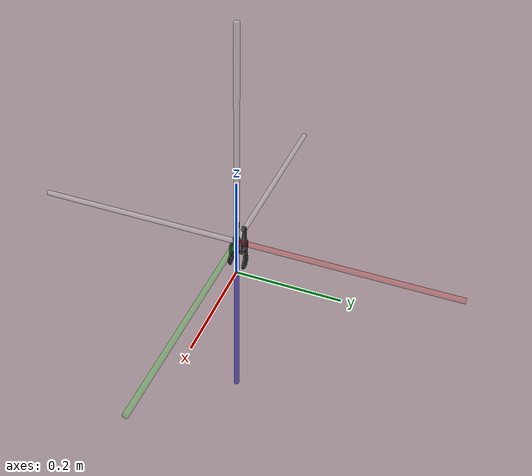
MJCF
<mujoco model="jetarm gripper">
    <compiler angle="radian" autolimits="true"/>
    <option integrator="implicitfast" gravity="0 0 0"/>
    <default>
        <default class="jetarm_gripper">
            <joint armature="0.1" damping="10" frictionloss="0.1"/>
            <general dyntype="none" biastype="affine" ctrlrange="0 1.57" forcerange="-20 20"/>
            <geom rgba="0.1 0.1 0.1 1" type="mesh" contype="0" conaffinity="0" group="1"/>
            <default class="visual">
                <geom type="mesh" contype="0" conaffinity="0" group="2"/>
            </default>
            <default class="collision">
                <geom type="mesh" contype="1" conaffinity="1" condim="4" group="3" friction="1 1 1" solimp="1 1 1" solref="0.01 1"/>
            </default>
        </default>
    </default>
    <!-- Visual meshes -->
    <asset>
        <mesh name="Gripper_Base" file="JetarmGripper/meshes/Gripper_Base.STL" scale="0.001 0.001 0.001"/>
        <mesh name="r_link" file="JetarmGripper/meshes/r_link.stl"/>
        <mesh name="l_link" file="JetarmGripper/meshes/l_link.stl"/>
        <mesh name="r_in_link" file="JetarmGripper/meshes/r_in_link.stl"/>
        <mesh name="r_out_link" file="JetarmGripper/meshes/r_out_link.stl"/>
        <mesh name="l_in_link" file="JetarmGripper/meshes/l_in_link.stl"/>
        <mesh name="l_out_link" file="JetarmGripper/meshes/l_out_link.stl"/>
    </asset>
    <worldbody>
        <body name="gripper" childclass="jetarm_gripper">
            <geom type="mesh" contype="0" conaffinity="0" density="0" mass="0.0174988102544488" rgba="0.15 0.15 0.15 1" mesh="Gripper_Base" class="visual"/>
            <!-- collision -->
            <geom type="mesh" contype="1" conaffinity="1" rgba="0.8 0.8 0.8 1" mesh="Gripper_Base" class="collision"/>
            <!-- This site was added for visualization. -->
            <body name="eef" pos="0 0 0.075" euler="0 3.1415926 1.5707963">
                <site name="grip_site" pos="0 0 0" size="0.005" rgba="1 0 0 0.1" type="sphere" group="1"/>
                <site name="ee_x" pos="0.2 0 0" size="0.005 .2"  quat="0.707105  0 0.707108 0 " rgba="1 0 0 0.1" type="cylinder" group="1"/>
                <site name="ee_y" pos="0 0.2 0" size="0.005 .2" quat="0.707105 0.707108 0 0" rgba="0 1 0 0.1" type="cylinder" group="1"/>
                <site name="ee_z" pos="0 0 0.2" size="0.005 .2" quat="1 0 0 0" rgba="0 0 1 0.5" type="cylinder" group="1"/>
                <site name="ee_x_ne" pos="-0.2 0 0" size="0.005 .2"  quat="0.707105  0 0.707108 0 " rgba="1 1 1 0.1" type="cylinder" group="1"/>
                <site name="ee_y_ne" pos="0 -0.2 0" size="0.005 .2" quat="0.707105 0.707108 0 0" rgba="1 1 1 0.1" type="cylinder" group="1"/>
                <site name="ee_z_ne" pos="0 0 -0.2" size="0.005 .2" quat="1 0 0 0" rgba="1 1 1 0.1" type="cylinder" group="1"/>
            </body>
            <body name="r_link" pos="-0.00704769 -0.0139998 0.0270071" quat="0.707107 0 0 0.707107">
                <inertial pos="0.000541258 -0.0015 0.00625151" mass="1e-05" diaginertia="10 10 10"/>
                <joint name="r_joint" pos="0 0 0" axis="0 -1 0" range="0 1.57" actuatorfrcrange="-1000 1000"/>
                <geom type="mesh" contype="0" conaffinity="0" density="0" rgba="0.3 0.3 0.3 1" mesh="r_link" class="visual"/>
                <!-- collision -->
            </body>
            <body name="l_link" pos="-0.00703115 0.0140002 0.027008" quat="0.707107 0 0 0.707107">
                <inertial pos="0.0054115 -0.0015023 0.0058059" mass="1e-05" diaginertia="10 10 10"/>
                <joint name="l_joint" pos="0 0 0" axis="0 1 0" range="0 1.57" actuatorfrcrange="-1000 1000"/>
                <geom type="mesh" contype="0" conaffinity="0" density="0" rgba="0.3 0.3 0.3 1" mesh="l_link" class="visual"/>
                <!-- collision -->
            </body>
            <body name="r_in_link" pos="-0.0065253 -0.0075039 0.0459914" quat="0.707107 0 0 0.707107">
                <inertial pos="-1.7319e-09 -0.006 0.0145" mass="1e-05" diaginertia="10 10 10"/>
                <joint name="r_in_joint" pos="0 0 0" axis="0 1 0" range="-1.57 0" actuatorfrcrange="-1000 1000"/>
                <geom type="mesh" contype="0" conaffinity="0" density="0" rgba="0.3 0.3 0.3 1" mesh="r_in_link" class="visual"/>
                <!-- collision -->
                <body name="r_out_link" pos="0 0 0.029">
                    <inertial pos="-0.0013784 -0.0060519 0.0096418" mass="1e-05" diaginertia="10 10 10"/>
                    <joint name="r_out_joint" pos="0 0 0" axis="0 1 0" range="0 1.57" actuatorfrcrange="-1000 1000"/>
                    <geom type="mesh" contype="0" conaffinity="0" density="0" rgba="0.3 0.3 0.3 1" mesh="r_out_link" class="visual"/>
                    <!-- collision -->
                    <geom type="mesh" contype="1" conaffinity="1" rgba="0.8 0.8 0.8 1" mesh="r_out_link" class="collision"/>
                </body>
            </body>
            <body name="l_in_link" pos="-0.0065053 0.0075039 0.0459911" quat="0.707107 0 0 0.707107">
                <inertial pos="-1.7319e-09 -0.006 0.0145" mass="1e-05" diaginertia="10 10 10"/>
                <joint name="l_in_joint" pos="0 0 0" axis="0 -1 0" range="-1.57 0" actuatorfrcrange="-1000 1000"/>
                <geom type="mesh" contype="0" conaffinity="0" density="0" rgba="0.3 0.3 0.3 1" mesh="l_in_link" class="visual"/>
                <!-- collision -->
                <body name="l_out_link" pos="0 0 0.029">
                    <inertial pos="0.0013784 -0.0060519 0.0096418" mass="1e-05" diaginertia="10 10 10"/>
                    <joint name="l_out_joint" pos="0 0 0" axis="0 -1 0" range="0 1.57" actuatorfrcrange="-1000 1000"/>
                    <geom type="mesh" contype="0" conaffinity="0" density="0" rgba="0.3 0.3 0.3 1" mesh="l_out_link" class="visual"/>
                    <!-- collision -->
                    <geom type="mesh" contype="1" conaffinity="1" rgba="0.8 0.8 0.8 1" mesh="l_out_link" class="collision"/>
                </body>
            </body>
        </body>
    </worldbody>
    <contact>
        <exclude body1='r_in_link' body2='r_out_link'/>
        <exclude body1='l_in_link' body2='l_out_link'/>
    </contact>
    <equality>
        <connect anchor="0 0 0.029" body1="r_link" body2="r_out_link"/>
        <connect anchor="0 0 0.029" body1="l_link" body2="l_out_link"/>
        <joint joint1="r_joint" joint2="l_joint"/>
    </equality>
    <equality>
        <joint joint1="r_joint" joint2="l_joint"/>
    </equality>
    <actuator>
        <general class="jetarm_gripper" name="actuator6" joint="r_joint" forcerange="-100 100" ctrlrange="-1.5 1.5" gainprm="100 0 0" biasprm="0 -50 -1"/>
    </actuator>

</mujoco>
